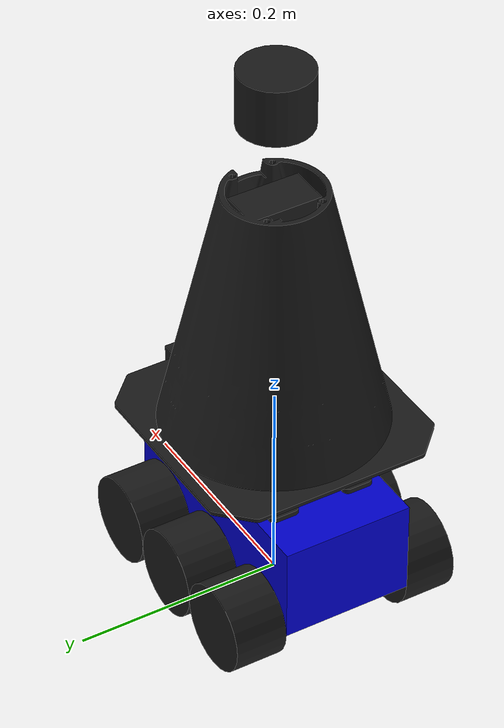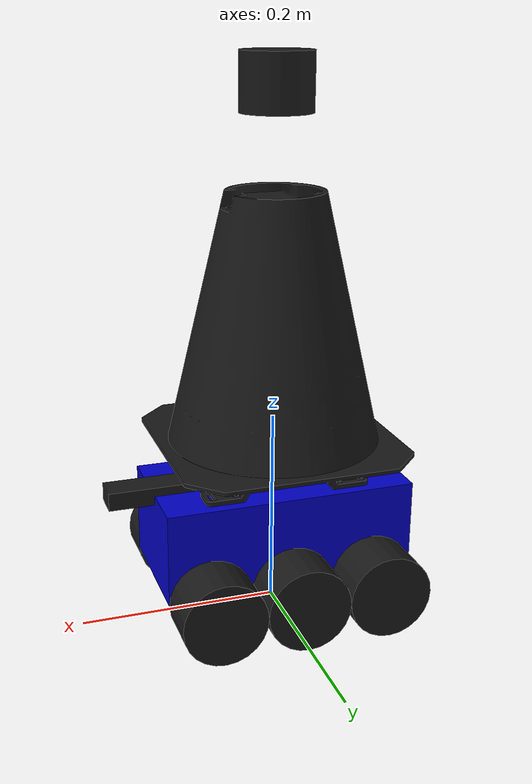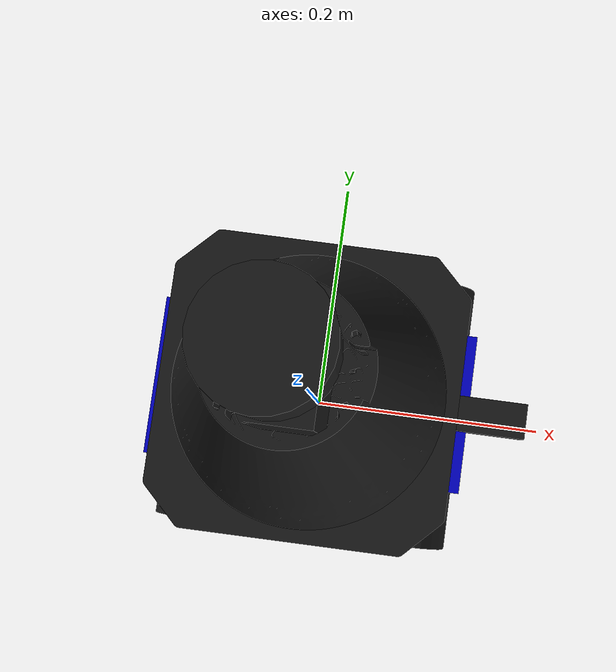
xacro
<?xml version="1.0"?>
<robot xmlns:xacro="http://www.ros.org/wiki/xacro" name="six_wheeled_robot">

  <!-- ================= GEOMETRIA ================= -->
  <xacro:property name="base_length" value="0.2525"/>
  <xacro:property name="base_width"  value="0.126"/>
  <xacro:property name="base_height" value="0.094"/>
  <xacro:property name="base_mass"   value="2.0"/> <!-- Dodana masa kadłuba [kg] -->

  <xacro:property name="wheel_radius" value="0.042"/>
  <xacro:property name="wheel_width"  value="0.0502"/>
  <xacro:property name="wheel_mass"   value="0.2"/> <!-- Dodana masa koła [kg] -->

  <xacro:property name="wheel_x_offset" value="0.084"/>
  <xacro:property name="wheel_y_offset" value="${(base_width/2) + (wheel_width/2)}"/>
  <xacro:property name="wheel_z_offset" value="${-base_height/2}"/>

  <!-- ================= MAKRA INERCJI ================= -->
  <xacro:macro name="box_inertia" params="m w h d">
    <inertial>
      <origin xyz="0 0 0" rpy="0 0 0"/>
      <mass value="${m}"/>
      <!-- Zwróć uwagę na poprawione przypisanie zmiennych w w(width), h(height), d(depth/length) -->
      <inertia ixx="${(m/12) * (w*w + h*h)}" ixy="0.0" ixz="0.0"
               iyy="${(m/12) * (d*d + h*h)}" iyz="0.0"
               izz="${(m/12) * (d*d + w*w)}"/>
    </inertial>
  </xacro:macro>

  <xacro:macro name="cylinder_inertia" params="m r h">
    <inertial>
      <origin xyz="0 0 0" rpy="1.57079632679 0 0"/>
      <mass value="${m}"/>
      <inertia ixx="${(m/12) * (3*r*r + h*h)}" ixy="0" ixz="0"
               iyy="${(m/12) * (3*r*r + h*h)}" iyz="0"
               izz="${(m/2) * (r*r)}"/>
    </inertial>
  </xacro:macro>

  <!-- ================= MATERIAŁY RVIZ ================= -->
  <material name="blue">
    <color rgba="0.0 0.0 0.8 1.0"/>
  </material>
  <material name="black">
    <color rgba="0.1 0.1 0.1 1.0"/>
  </material>

  <!-- ================= WIRTUALNY KORZEŃ (DLA SLAM I KDL) ================= -->
  <link name="base_footprint"/>

    <joint name="base_footprint_joint" type="fixed">
    <parent link="base_footprint"/>
    <child link="base_link"/>
    <origin xyz="0 0 ${wheel_radius - wheel_z_offset}" rpy="0 0 0"/>
  </joint>

  <!-- ================= KADŁUB ================= -->
  <link name="base_link">
    <visual>
      <geometry>
        <box size="${base_length} ${base_width} ${base_height}"/>
      </geometry>
      <material name="blue"/>
    </visual>
    <collision>
      <geometry>
        <box size="${base_length} ${base_width} ${base_height}"/>
      </geometry>
    </collision>
    <!-- Fizyka kadłuba -->
    <xacro:box_inertia m="${base_mass}" w="${base_width}" d="${base_length}" h="${base_height}"/>
  </link>

  <gazebo reference="base_link">
    <material>Gazebo/Blue</material>
  </gazebo>

  <!-- ================= MAKRO KOŁA ================= -->
  <xacro:macro name="wheel" params="name x y">
    <link name="${name}_link">
      <visual>
        <origin xyz="0 0 0" rpy="1.57079632679 0 0"/>
        <geometry>
          <cylinder radius="${wheel_radius}" length="${wheel_width}"/>
        </geometry>
        <material name="black"/>
      </visual>
      <collision>
        <origin xyz="0 0 0" rpy="1.57079632679 0 0"/>
        <geometry>
          <cylinder radius="${wheel_radius}" length="${wheel_width}"/>
        </geometry>
      </collision>
      <!-- Fizyka koła -->
      <xacro:cylinder_inertia m="${wheel_mass}" r="${wheel_radius}" h="${wheel_width}"/>
    </link>

    <joint name="${name}_joint" type="continuous">
      <parent link="base_link"/>
      <child link="${name}_link"/>
      <origin xyz="${x} ${y} ${wheel_z_offset}" rpy="0 0 0"/>
      <axis xyz="0 1 0"/>
    </joint>

    <gazebo reference="${name}_link">
      <material>Gazebo/Black</material>
      <mu1>1.0</mu1>
      <mu2>0.1</mu2>
    </gazebo>
  </xacro:macro>

  <!-- ================= INSTANCJE KÓŁ ================= -->
  <xacro:wheel name="front_left" x="${wheel_x_offset}"  y="${wheel_y_offset}"/>
  <xacro:wheel name="mid_left"   x="0.0"                y="${wheel_y_offset}"/>
  <xacro:wheel name="rear_left"  x="-${wheel_x_offset}" y="${wheel_y_offset}"/>

  <xacro:wheel name="front_right" x="${wheel_x_offset}"  y="-${wheel_y_offset}"/>
  <xacro:wheel name="mid_right"   x="0.0"                y="-${wheel_y_offset}"/>
  <xacro:wheel name="rear_right"  x="-${wheel_x_offset}" y="-${wheel_y_offset}"/>

  <!-- ================= WTYCZKA GAZEBO (NAPĘD 6x6) ================= -->
  <gazebo>
    <plugin name="diff_drive" filename="libgazebo_ros_diff_drive.so">
      <update_rate>30.0</update_rate>

      <num_wheel_pairs>3</num_wheel_pairs>

      <!-- Lewa strona -->
      <left_joint>front_left_joint</left_joint>
      <left_joint>mid_left_joint</left_joint>
      <left_joint>rear_left_joint</left_joint>

      <!-- Prawa strona -->
      <right_joint>front_right_joint</right_joint>
      <right_joint>mid_right_joint</right_joint>
      <right_joint>rear_right_joint</right_joint>

      <!-- KLUCZOWE: po jednym wpisie NA KAŻDĄ PARĘ -->
      <wheel_separation>${2 * wheel_y_offset}</wheel_separation>
      <wheel_separation>${2 * wheel_y_offset}</wheel_separation>
      <wheel_separation>${2 * wheel_y_offset}</wheel_separation>

      <wheel_diameter>${2 * wheel_radius}</wheel_diameter>
      <wheel_diameter>${2 * wheel_radius}</wheel_diameter>
      <wheel_diameter>${2 * wheel_radius}</wheel_diameter>

      <max_wheel_torque>20</max_wheel_torque>
      <max_wheel_acceleration>1.0</max_wheel_acceleration>

      <publish_odom>true</publish_odom>
      <publish_odom_tf>true</publish_odom_tf>
      <publish_wheel_tf>true</publish_wheel_tf>

      <odometry_frame>odom</odometry_frame>
      <robot_base_frame>base_footprint</robot_base_frame>
    </plugin>
  </gazebo>

<!-- ================= OBUDOWA (WIEZA POD LIDAR) ================= -->
  <xacro:property name="tower_height" value="0.36"/>
  <xacro:property name="tower_size_x" value="0.289"/>
  <xacro:property name="tower_size_y" value="0.23"/>
  <xacro:property name="tower_mass"   value="0.15"/>

  <!-- Origin modelu STL lezy w globalnym ukladzie CAD (X~636, Y~918, Z~1270 mm).
       Przesuwamy go tak, zeby srodek podstawy wypadl w (0,0,0). -->
  <link name="tower_link">
    <visual>
      <origin xyz="-0.751 1.385 -0.918" rpy="1.5708 0 0"/>
      <geometry>
        <mesh filename="package://robot_description/meshes/obudowa.stl"
              scale="0.001 0.001 0.001"/>
      </geometry>
      <material name="black"/>
    </visual>
    <collision>
      <origin xyz="0 0 ${tower_height/2}" rpy="0 0 0"/>
      <geometry>
        <box size="${tower_size_x} ${tower_size_y} ${tower_height}"/>
      </geometry>
    </collision>
    <xacro:box_inertia m="${tower_mass}" w="${tower_size_y}" d="${tower_size_x}" h="${tower_height}"/>
  </link>

  <joint name="tower_joint" type="fixed">
    <parent link="base_link"/>
    <child link="tower_link"/>
    <origin xyz="0 0 ${base_height/2}" rpy="0 0 0"/>
  </joint>

  <gazebo reference="tower_link">
    <material>Gazebo/Black</material>
  </gazebo>

  <!--LIDAR-->

  <xacro:property name="lidar_radius" value="0.035"/>
  <xacro:property name="lidar_height" value="0.055"/>
  <xacro:property name="lidar_mass"   value="0.190"/>

  <link name="lidar_link">
    <visual>
      <geometry>
        <cylinder radius="${lidar_radius}" length="${lidar_height}"/>
      </geometry>
      <material name="black"/>
    </visual>
    <collision>
      <geometry>
        <cylinder radius="${lidar_radius}" length="${lidar_height}"/>
      </geometry>
    </collision>
    <inertial>
      <origin xyz="0 0 0" rpy="0 0 0"/>
      <mass value="${lidar_mass}"/>
      <inertia ixx="${(lidar_mass/12) * (3*lidar_radius*lidar_radius + lidar_height*lidar_height)}" ixy="0" ixz="0"
               iyy="${(lidar_mass/12) * (3*lidar_radius*lidar_radius + lidar_height*lidar_height)}" iyz="0"
               izz="${(lidar_mass/2) * (lidar_radius*lidar_radius)}"/>
    </inertial>
  </link>

  <joint name="lidar_joint" type="fixed">
    <parent link="tower_link"/>
    <child link="lidar_link"/>
    <origin xyz="0 0 ${tower_height + lidar_height/2}" rpy="0 0 0"/>
  </joint>

  <gazebo reference="lidar_link">
    <material>Gazebo/Black</material>
    <sensor type="ray" name="rplidar_a1_sensor">
      <pose>0 0 0 0 0 0</pose>
      <visualize>true</visualize>
      <update_rate>5.5</update_rate>
      <ray>
        <scan>
          <horizontal>
            <samples>360</samples>
            <resolution>1</resolution>
            <min_angle>-3.14159</min_angle>
            <max_angle>3.14159</max_angle>
          </horizontal>
        </scan>
        <range>
          <min>0.15</min>
          <max>12.0</max>
          <resolution>0.01</resolution>
        </range>
      </ray>
      <plugin name="gazebo_ros_lidar" filename="libgazebo_ros_ray_sensor.so">
        <ros>
          <argument>~/out:=scan</argument>
        </ros>
        <output_type>sensor_msgs/LaserScan</output_type>
        <frame_name>lidar_link</frame_name>
      </plugin>
    </sensor>
  </gazebo>

  <!--KAMERA GŁĘBI OAK-D LITE-->

  <xacro:property name="cam_length" value="0.091"/>
  <xacro:property name="cam_width"  value="0.028"/>
  <xacro:property name="cam_height" value="0.018"/>
  <xacro:property name="cam_mass"   value="0.061"/>

  <link name="camera_link">
    <visual>
      <geometry>
        <box size="${cam_length} ${cam_width} ${cam_height}"/>
      </geometry>
      <material name="black"/>
    </visual>
    <collision>
      <geometry>
        <box size="${cam_length} ${cam_width} ${cam_height}"/>
      </geometry>
    </collision>
    <xacro:box_inertia m="${cam_mass}" w="${cam_width}" d="${cam_length}" h="${cam_height}"/>
  </link>

  <joint name="camera_joint" type="fixed">
    <parent link="base_link"/>
    <child link="camera_link"/>
    <!-- montaż na przedniej krawędzi kadłuba, u góry -->
    <origin xyz="${base_length/2} 0 ${base_height/2}" rpy="0 0 0"/>
  </joint>

  <!-- Ramka "optyczna" (konwencja ROS- Z do przodu) - wymagana żeby obraz/chmura punktów miały poprawną orientację -->
  <link name="camera_link_optical"/>

  <joint name="camera_optical_joint" type="fixed">
    <parent link="camera_link"/>
    <child link="camera_link_optical"/>
    <origin xyz="0 0 0" rpy="-1.57079632679 0 -1.57079632679"/>
  </joint>

  <gazebo reference="camera_link">
    <material>Gazebo/Black</material>
    <sensor type="depth" name="oak_d_lite_depth">
      <update_rate>5</update_rate>
      <camera>
        <horizontal_fov>1.204</horizontal_fov> <!-- ~69 st. FOV RGB, OAK-D Lite -->
        <image>
          <width>640</width>
          <height>480</height>
          <format>B8G8R8</format>
        </image>
        <clip>
          <near>0.1</near>
          <far>10.0</far>
        </clip>
      </camera>
      <plugin name="oak_d_lite_controller" filename="libgazebo_ros_camera.so">
        <ros>
          <namespace>sniff</namespace>
          <remapping>image_raw:=camera/color/image_raw</remapping>
          <remapping>camera_info:=camera/color/camera_info</remapping>
          <remapping>depth/image_raw:=camera/depth/image_raw</remapping>
          <remapping>points:=camera/depth/points</remapping>
        </ros>
        <frame_name>camera_link_optical</frame_name>
        <min_depth>0.1</min_depth> # zmienić na 0.2 - w domyśle metry
        <max_depth>50.0</max_depth> #zmienić na 12.0 bo takie są ograniczenia OAK-D lite kamery
      </plugin>
    </sensor>
  </gazebo>

</robot>
